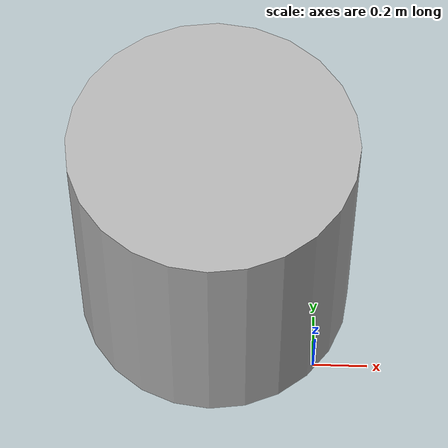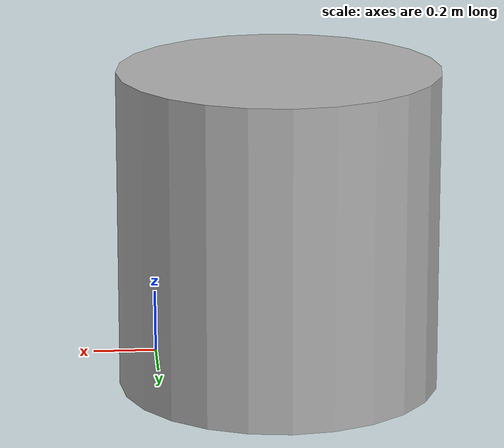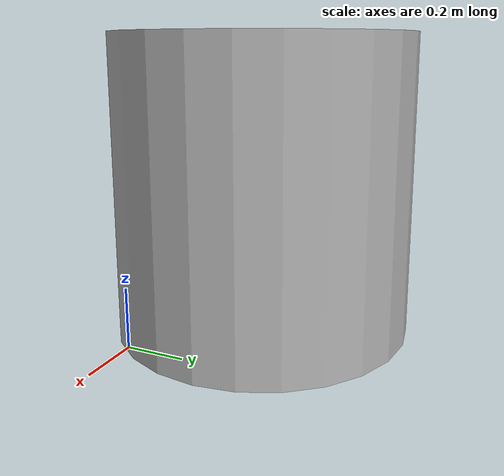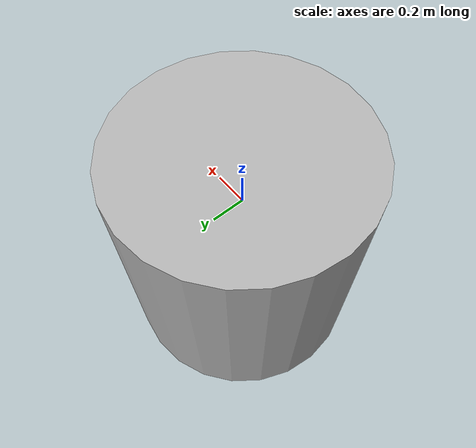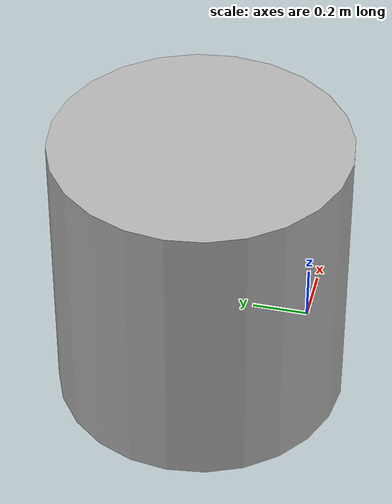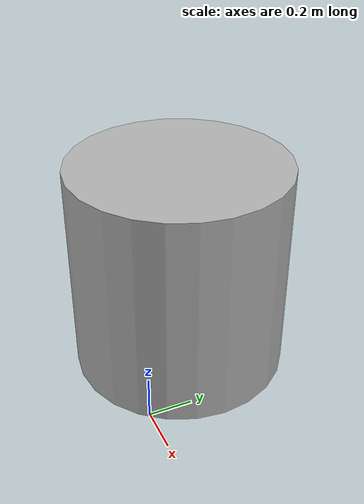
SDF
<sdf version='1.9'>
  <world name='default'>
    <gravity>0 0 -9.8</gravity>
    <magnetic_field>6e-06 2.3e-05 -4.2e-05</magnetic_field>
    <atmosphere type='adiabatic'/>
    <physics type='ode'>
      <max_step_size>0.001</max_step_size>
      <real_time_factor>1</real_time_factor>
      <real_time_update_rate>1000</real_time_update_rate>
    </physics>
    <scene>
      <ambient>0.4 0.4 0.4 1</ambient>
      <background>0.7 0.7 0.7 1</background>
      <shadows>true</shadows>
    </scene>
    <model name='cylinder'>
      <pose>-0.374767 0.30927 0.5 0 -0 0</pose>
      <link name='cylinder_link'>
        <inertial>
          <inertia>
            <ixx>0.14580000000000001</ixx>
            <ixy>0</ixy>
            <ixz>0</ixz>
            <iyy>0.14580000000000001</iyy>
            <iyz>0</iyz>
            <izz>0.125</izz>
          </inertia>
          <mass>1</mass>
          <pose>0 0 0 0 -0 0</pose>
        </inertial>
        <collision name='cylinder_collision'>
          <geometry>
            <cylinder>
              <radius>0.5</radius>
              <length>1</length>
            </cylinder>
          </geometry>
          <surface>
            <friction>
              <ode/>
            </friction>
            <bounce/>
            <contact/>
          </surface>
        </collision>
        <visual name='cylinder_visual'>
          <geometry>
            <cylinder>
              <radius>0.5</radius>
              <length>1</length>
            </cylinder>
          </geometry>
          <material>
            <ambient>0.3 0.3 0.3 1</ambient>
            <diffuse>0.7 0.7 0.7 1</diffuse>
            <specular>1 1 1 1</specular>
          </material>
        </visual>
        <pose>0 0 0 0 -0 0</pose>
        <enable_wind>false</enable_wind>
      </link>
      <static>false</static>
      <self_collide>false</self_collide>
    </model>
    <plugin
        filename="RGLGazeboPlugin"
        name="rgl::RGLGazeboPlugin">
    </plugin>
  </world>
</sdf>
